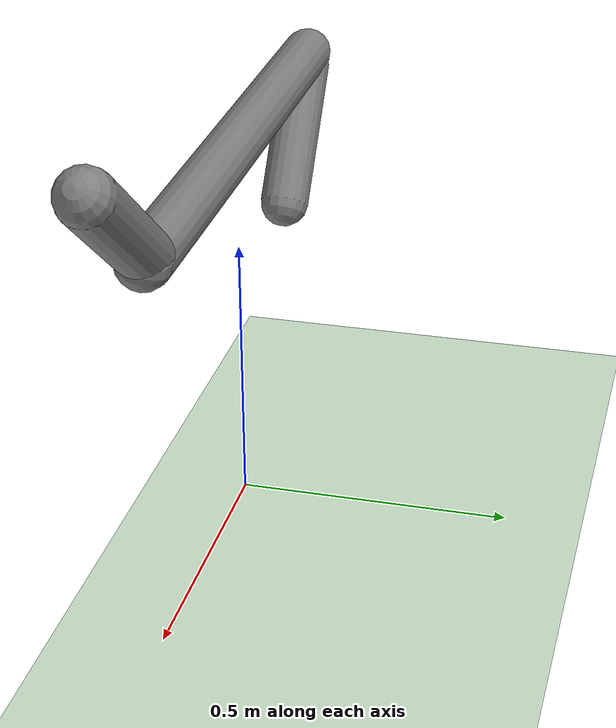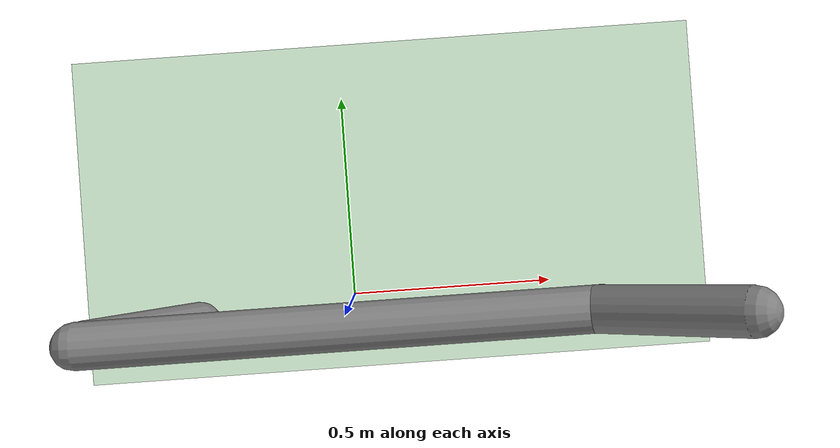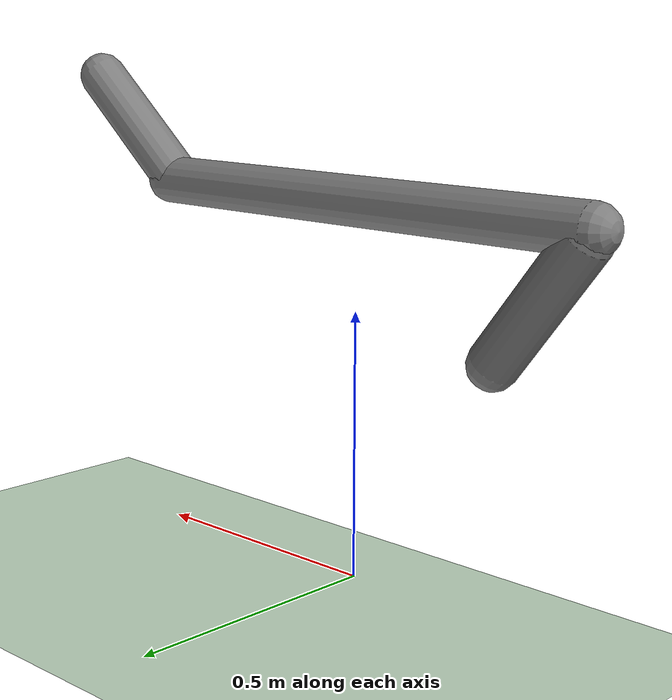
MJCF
<mujoco model="cheetah">
  <compiler angle="radian" coordinate="local" inertiafromgeom="true"/>
  <default>
    <joint armature=".1" damping=".01" limited="true" solimplimit="0 .8 .03" solreflimit=".02 1" stiffness="8"/>
    <motor ctrllimited="true" ctrlrange="-1 1"/>
  </default>
  <asset>
    <texture builtin="gradient" height="100" rgb1="1 1 1" rgb2="0 0 0" type="skybox" width="100"/>
    <texture builtin="flat" height="1278" mark="cross" markrgb="1 1 1" name="texgeom" random="0.01" rgb1="0.8 0.6 0.4" rgb2="0.8 0.6 0.4" type="cube" width="127"/>
    <texture builtin="checker" height="100" name="texplane" rgb1="0 0 0" rgb2="0.8 0.8 0.8" type="2d" width="100"/>
    <material name="MatPlane" reflectance="0.5" shininess="1" specular="1" texrepeat="60 60" texture="texplane"/>
    <material name="geom" texture="texgeom" texuniform="true"/>
  </asset>
  <size nstack="300000" nuser_geom="1"/>
  <option gravity="0 0 -9.81" timestep="0.01"/>
  <worldbody>
    <light cutoff="100" diffuse="1 1 1" dir="-1 -0 -1.5" directional="true" exponent="1" pos="0 0 1.3" specular=".1 .1 .1"/>
    <geom conaffinity="1" condim="3" material="MatPlane" name="floor" pos="0 0 0" rgba="0.8 0.9 0.8 1" size="40 40 40" type="plane"/>
    <body name="torso" pos="0 0 .7">
      <camera mode="trackcom" name="tilted" pos="2.9 3.2 0.3" xyaxes="1 -.9 0 0 0 -1" />
      <camera name="track" mode="trackcom" pos="0 3 0.3" xyaxes="1 0 0 0 0 -1"/>
      <joint armature="0" axis="1 0 0" damping="0" limited="false" name="rootx" pos="0 0 0" stiffness="0" type="slide"/>
      <joint armature="0" axis="0 0 1" damping="0" limited="false" name="rootz" pos="0 0 0" stiffness="0" type="slide"/>
      <joint armature="0" axis="0 1 0" damping="0" limited="false" name="rooty" pos="0 0 0" stiffness="0" type="hinge"/>
      <geom fromto="-.5 0 0 .5 0 0" name="torso" size="0.046" type="capsule"/>
      <geom axisangle="0 1 0 .87" name="head" pos=".6 0 .1" size="0.046 .15" type="capsule"/>
      <body name="bthigh" pos="-.5 0 0">
        <joint axis="0 1 0" damping="6" name="bthigh" pos="0 0 0" range="-.52 1.05" stiffness="240" type="hinge"/>
        <geom axisangle="0 1 0 -3.8" name="bthigh" pos=".1 0 -.13" size="0.046 .145" type="capsule"/>
      </body>
    </body>
  </worldbody>
  <actuator>
    <motor gear="120" joint="bthigh" name="bthigh"/>
  </actuator>
</mujoco>
